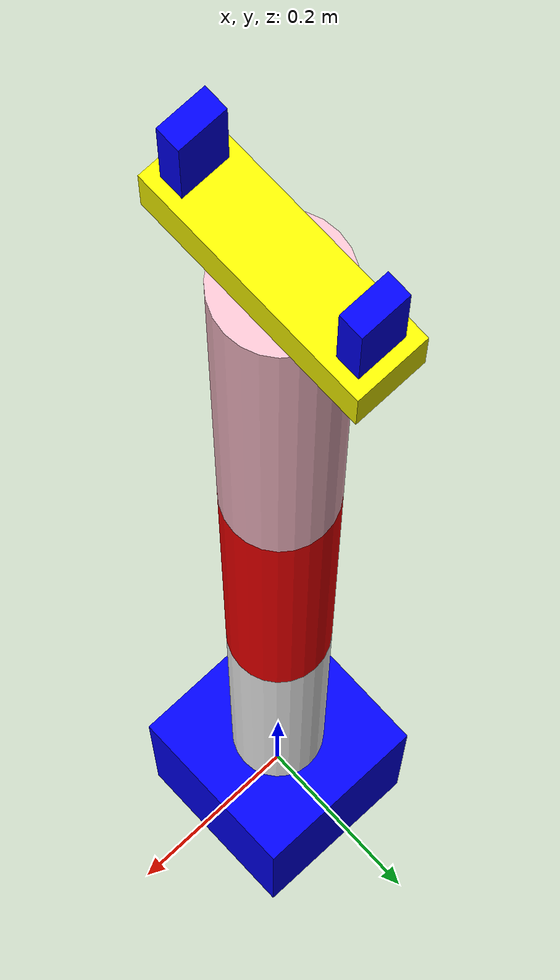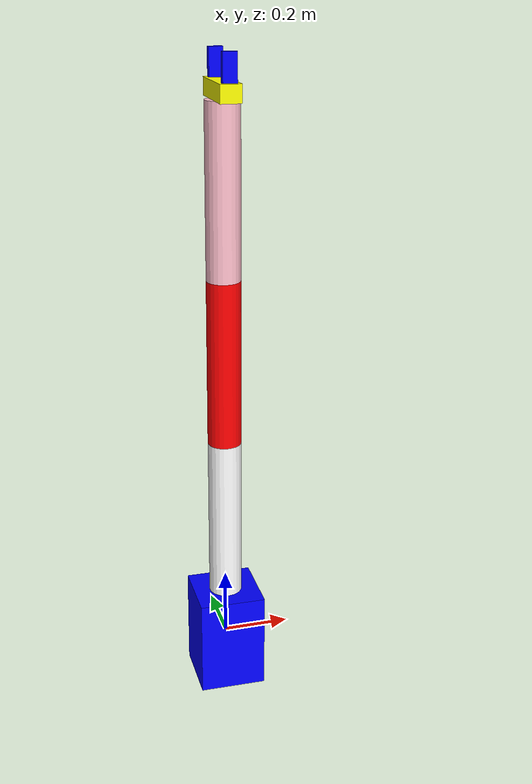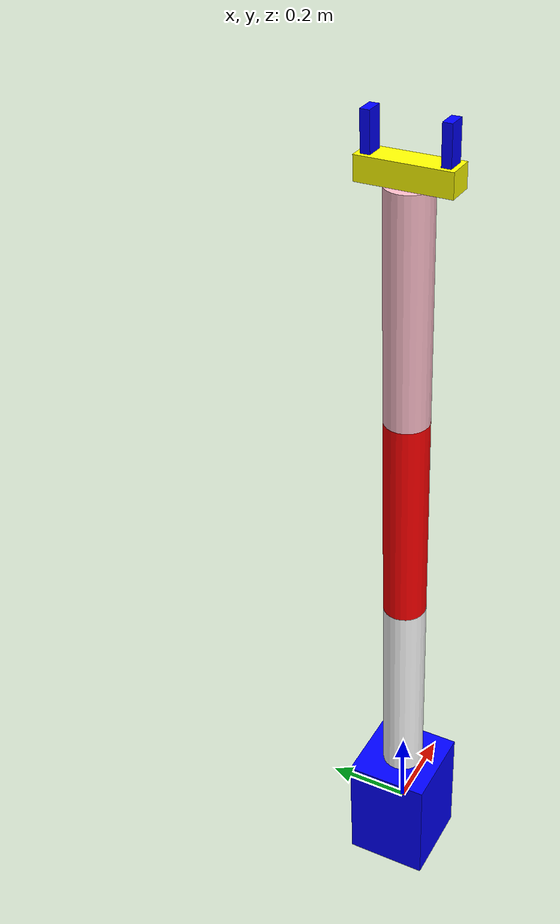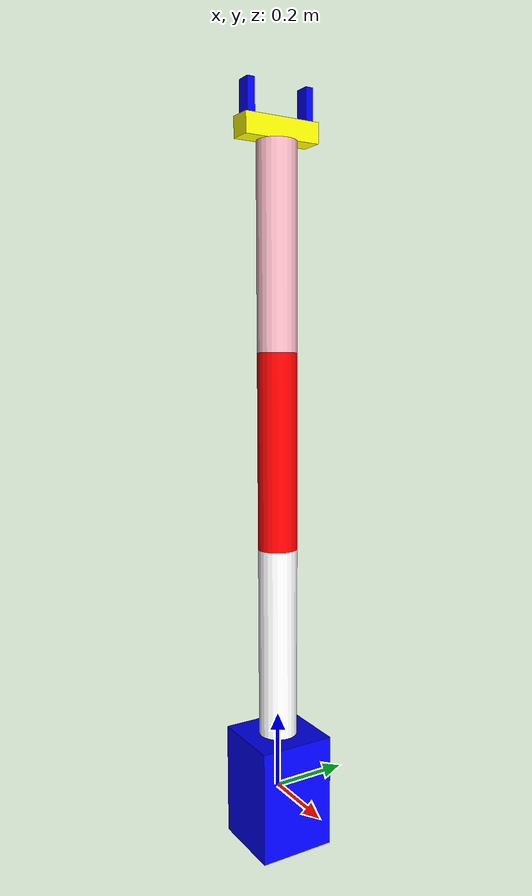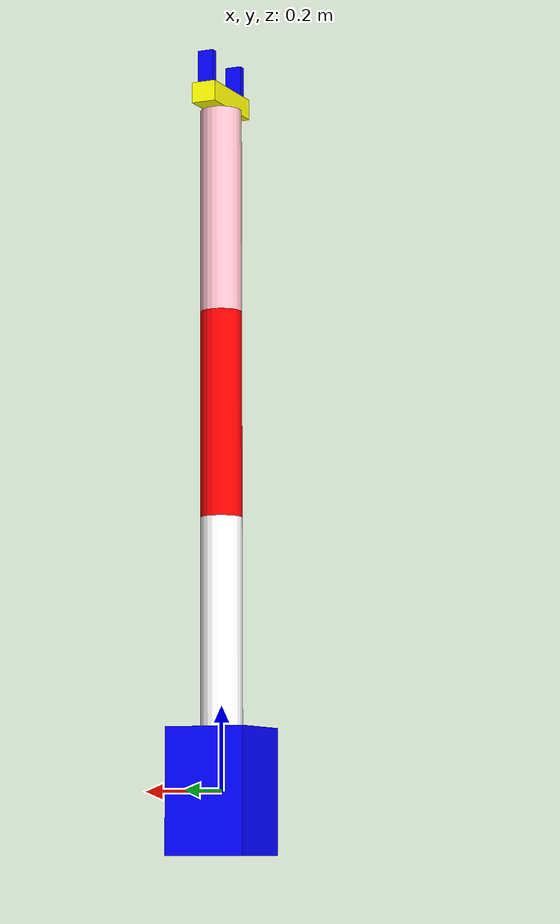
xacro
<?xml version="1.0"?>
<robot xmlns:xacro="http://www.ros.org/wiki/xacro" name="test_robot">
    <xacro:arg name="initial_positions_file" default="initial_positions.yaml" />

    <!-- Import test_robot urdf file -->
    <xacro:include filename="$(find my_first)/urdf/my_robot.urdf" />

    <!-- Import control_xacro -->
    <xacro:include filename="test_robot.ros2_control.xacro" />

    <xacro:test_robot_ros2_control name="FakeSystem" initial_positions_file="$(arg initial_positions_file)"/>

<gazebo>
    <plugin filename="libgz_ros2_control-system.so"
            name="gz_ros2_control::GazeboSimROS2ControlPlugin">
      <parameters>$(find my_robot_moveit_config)/config/ros2_controllers.yaml</parameters>
      <controller_manager_name>controller_manager</controller_manager_name>
    </plugin>
  </gazebo>

</robot>

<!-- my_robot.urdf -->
<robot name="test_robot">

  <material name="blue"><color rgba="0.0 0.0 1.0 1.0"/></material>
  <material name="white"><color rgba="1.0 1.0 1.0 1.0"/></material>
  <material name="red"><color rgba="1.0 0.0 0.0 1.0"/></material>
  <material name="yellow"><color rgba="1.0 1.0 0.0 1.0"/></material>
  <material name="pink"><color rgba="1.0 0.75 0.8 1.0"/></material>

  <link name="base_link">
    <visual>
      <geometry><box size="0.2 0.2 0.3"/></geometry>
      <material name="blue"/>
    </visual>
    <collision>
      <geometry><box size="0.2 0.2 0.3"/></geometry>
    </collision>
    <inertial>
      <origin xyz="0 0 0" rpy="0 0 0"/>
      <mass value="50.0"/>
      <inertia ixx="0.02167" ixy="0.0" ixz="0.0" iyy="0.02167" iyz="0.0" izz="0.01333"/>
    </inertial>
  </link>

  <joint name="arm_0_joint" type="revolute">
    <parent link="base_link"/>
    <child link="arm_1_link"/>
    <origin xyz="0 0 0.15" rpy="0 0 0"/>
    <axis xyz="0 0 1"/>
    <limit lower="-3.14" upper="3.14" effort="10.0" velocity="1.0"/>
  </joint>

  <link name="arm_1_link">
    <visual>
      <origin xyz="0 0 0.25" rpy="0 0 0"/>
      <geometry><cylinder radius="0.05" length="0.5"/></geometry>
      <material name="white"/>
    </visual>
    <collision>
      <origin xyz="0 0 0.25" rpy="0 0 0"/>
      <geometry><cylinder radius="0.05" length="0.5"/></geometry>
    </collision>
    <inertial>
      <origin xyz="0 0 0.25" rpy="0 0 0"/>
      <mass value="1.0"/>
      <inertia ixx="0.02145" ixy="0.0" ixz="0.0" iyy="0.02145" iyz="0.0" izz="0.00125"/>
    </inertial>
  </link>

  <joint name="arm_1_joint" type="revolute">
    <parent link="arm_1_link"/>
    <child link="arm_2_link"/>
    <origin xyz="0 0 0.5" rpy="0 0 0"/>
    <axis xyz="0 1 0"/>
    <limit lower="-1.57" upper="1.57" effort="10.0" velocity="1.0"/>
  </joint>

  <link name="arm_2_link">
    <visual>
      <origin xyz="0 0 0.25" rpy="0 0 0"/>
      <geometry><cylinder radius="0.05" length="0.5"/></geometry>
      <material name="red"/>
    </visual>
    <collision>
      <origin xyz="0 0 0.25" rpy="0 0 0"/>
      <geometry><cylinder radius="0.05" length="0.5"/></geometry>
    </collision>
    <inertial>
      <origin xyz="0 0 0.25" rpy="0 0 0"/>
      <mass value="1.0"/>
      <inertia ixx="0.02145" ixy="0.0" ixz="0.0" iyy="0.02145" iyz="0.0" izz="0.00125"/>
    </inertial>
  </link>

  <joint name="arm_2_joint" type="revolute">
    <parent link="arm_2_link"/>
    <child link="arm_3_link"/>
    <origin xyz="0 0 0.5" rpy="0 0 0"/>
    <axis xyz="0 1 0"/>
    <limit lower="-1.57" upper="1.57" effort="10.0" velocity="1.0"/>
  </joint>

  <link name="arm_3_link">
    <visual>
      <origin xyz="0 0 0.25" rpy="0 0 0"/>
      <geometry><cylinder radius="0.05" length="0.5"/></geometry>
      <material name="pink"/>
    </visual>
    <collision>
      <origin xyz="0 0 0.25" rpy="0 0 0"/>
      <geometry><cylinder radius="0.05" length="0.5"/></geometry>
    </collision>
    <inertial>
      <origin xyz="0 0 0.25" rpy="0 0 0"/>
      <mass value="1.0"/>
      <inertia ixx="0.02145" ixy="0.0" ixz="0.0" iyy="0.02145" iyz="0.0" izz="0.00125"/>
    </inertial>
  </link>

  <joint name="arm_3_joint" type="revolute">
    <parent link="arm_3_link"/>
    <child link="hand_link"/>
    <origin xyz="0 0 0.5" rpy="0 0 0"/>
    <axis xyz="0 1 0"/>
    <limit lower="-1.57" upper="1.57" effort="10.0" velocity="1.0"/>
  </joint>

  <link name="hand_link">
    <visual>
      <origin xyz="0 0 0.025" rpy="0 0 0"/>
      <geometry><box size="0.06 0.2 0.05"/></geometry>
      <material name="yellow"/>
    </visual>
    <collision>
      <origin xyz="0 0 0.025" rpy="0 0 0"/>
      <geometry><box size="0.06 0.2 0.05"/></geometry>
    </collision>
    <inertial>
      <origin xyz="0 0 0.025" rpy="0 0 0"/>
      <mass value="0.5"/>
      <inertia ixx="0.00177" ixy="0.0" ixz="0.0" iyy="0.00025" iyz="0.0" izz="0.00181"/>
    </inertial>
  </link>

  <joint name="gripper_1_joint" type="prismatic">
    <parent link="hand_link"/>
    <child link="gripper_left_link"/>
    <origin xyz="0 0.08 0.05" rpy="0 0 0"/>
    <axis xyz="0 -1 0"/>
    <limit lower="0.0" upper="0.06" effort="5.0" velocity="0.5"/>
  </joint>

  <link name="gripper_left_link">
    <visual>
      <origin xyz="0 0 0.04" rpy="0 0 0"/>
      <geometry><box size="0.04 0.02 0.08"/></geometry>
      <material name="blue"/>
    </visual>
    <collision>
      <origin xyz="0 0 0.04" rpy="0 0 0"/>
      <geometry><box size="0.04 0.02 0.08"/></geometry>
    </collision>
    <inertial>
      <origin xyz="0 0 0.04" rpy="0 0 0"/>
      <mass value="0.2"/>
      <inertia ixx="0.000113" ixy="0.0" ixz="0.0" iyy="0.000133" iyz="0.0" izz="0.000033"/>
    </inertial>
  </link>

  <joint name="gripper_2_joint" type="prismatic">
    <parent link="hand_link"/>
    <child link="gripper_right_link"/>
    <origin xyz="0 -0.08 0.05" rpy="0 0 0"/>
    <axis xyz="0 1 0"/>
    <limit lower="0.0" upper="0.06" effort="5.0" velocity="0.5"/>
  </joint>

  <link name="gripper_right_link">
    <visual>
      <origin xyz="0 0 0.04" rpy="0 0 0"/>
      <geometry><box size="0.04 0.02 0.08"/></geometry>
      <material name="blue"/>
    </visual>
    <collision>
      <origin xyz="0 0 0.04" rpy="0 0 0"/>
      <geometry><box size="0.04 0.02 0.08"/></geometry>
    </collision>
    <inertial>
      <origin xyz="0 0 0.04" rpy="0 0 0"/>
      <mass value="0.2"/>
      <inertia ixx="0.000113" ixy="0.0" ixz="0.0" iyy="0.000133" iyz="0.0" izz="0.000033"/>
    </inertial>
  </link>

</robot>
